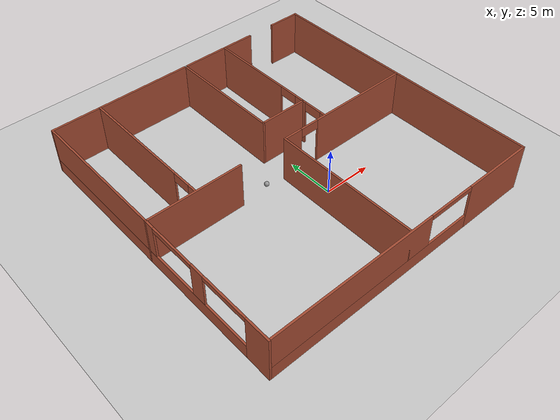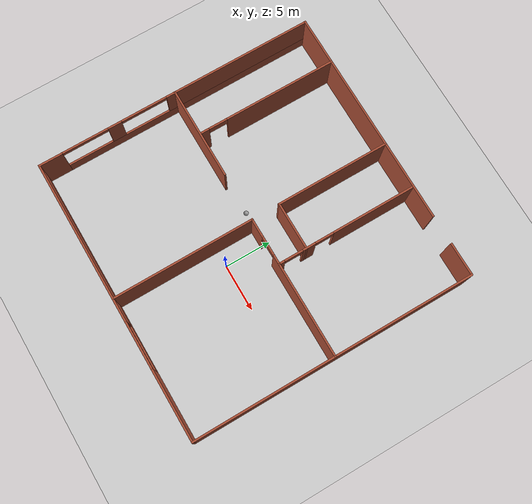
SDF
<sdf version="1.6">
 <world name="default">
  <model name="ground_plane">
   <static>1</static>
   <link name="link">
    <collision name="collision">
     <geometry><plane><normal>0 0 1</normal><size>100 100</size></plane></geometry>
     <surface><friction><ode><mu>100</mu><mu2>50</mu2></ode></friction></surface>
    </collision>
    <visual name="visual">
     <cast_shadows>0</cast_shadows>
     <geometry><plane><normal>0 0 1</normal><size>100 100</size></plane></geometry>
     <material>
      <script><uri>file://media/materials/scripts/gazebo.material</uri><name>Gazebo/Grey</name></script>
     </material>
    </visual>
   </link>
  </model>
  <model name="Appartment">
   <pose>-1.7896 4.0345 0 0 -0 0</pose>
   <link name="Door_1">
    <collision name="Door_1_Collision">
     <geometry><box><size>3 0.17 4</size></box></geometry>
     <pose>0 0 2 0 -0 0</pose>
    </collision>
    <visual name="Door_1_Visual">
     <pose>0 0 2 0 -0 0</pose>
     <geometry><box><size>3 0.17 4</size></box></geometry>
     <material>
      <script><uri>file://media/materials/scripts/gazebo.material</uri><name>Gazebo/Grey</name></script>
     </material>
    </visual>
    <pose>-10 -15 0 0 -0 0</pose>
   </link>
   <link name="Wall_26">
    <pose>-0.100001 15 0 0 -0 0</pose>
    <visual name="Wall_26_Visual_0">
     <pose>-3.2 0 2.5 0 -0 0</pose>
     <geometry><box><size>23.6 0.2 5</size></box></geometry>
     <material>
      <script><uri>file://media/materials/scripts/gazebo.material</uri><name>Gazebo/Bricks</name></script>
      <ambient>1 1 1 1</ambient>
     </material>
     <meta><layer>0</layer></meta>
    </visual>
    <collision name="Wall_26_Collision_0">
     <geometry><box><size>23.6 0.2 5</size></box></geometry>
     <pose>-3.2 0 2.5 0 -0 0</pose>
    </collision>
    <visual name="Wall_26_Visual_1">
     <pose>13.3 0 2.5 0 -0 0</pose>
     <geometry><box><size>3.4 0.2 5</size></box></geometry>
     <material>
      <script><uri>file://media/materials/scripts/gazebo.material</uri><name>Gazebo/Bricks</name></script>
      <ambient>1 1 1 1</ambient>
     </material>
     <meta><layer>0</layer></meta>
    </visual>
    <collision name="Wall_26_Collision_1">
     <geometry><box><size>3.4 0.2 5</size></box></geometry>
     <pose>13.3 0 2.5 0 -0 0</pose>
    </collision>
   </link>
   <link name="Wall_28">
    <collision name="Wall_28_Collision">
     <geometry><box><size>30.2 0.2 5</size></box></geometry>
     <pose>0 0 2.5 0 -0 0</pose>
    </collision>
    <visual name="Wall_28_Visual">
     <pose>0 0 2.5 0 -0 0</pose>
     <geometry><box><size>30.2 0.2 5</size></box></geometry>
     <material>
      <script><uri>file://media/materials/scripts/gazebo.material</uri><name>Gazebo/Bricks</name></script>
      <ambient>1 1 1 1</ambient>
     </material>
     <meta><layer>0</layer></meta>
    </visual>
    <pose>15 0 0 0 0 -1.5708</pose>
   </link>
   <link name="Wall_32">
    <pose>0.1 -15 0 0 -0 3.14159</pose>
    <visual name="Wall_32_Visual_0">
     <pose>-11.2 0 2.5 0 -0 0</pose>
     <geometry><box><size>7.6 0.2 5</size></box></geometry>
     <material>
      <script><uri>file://media/materials/scripts/gazebo.material</uri><name>Gazebo/Bricks</name></script>
      <ambient>1 1 1 1</ambient>
     </material>
     <meta><layer>0</layer></meta>
    </visual>
    <collision name="Wall_32_Collision_0">
     <geometry><box><size>7.6 0.2 5</size></box></geometry>
     <pose>-11.2 0 2.5 0 -0 0</pose>
    </collision>
    <visual name="Wall_32_Visual_1">
     <pose>3.8 0 0.75 0 -0 0</pose>
     <geometry><box><size>22.4 0.2 1.5</size></box></geometry>
     <material>
      <script><uri>file://media/materials/scripts/gazebo.material</uri><name>Gazebo/Bricks</name></script>
      <ambient>1 1 1 1</ambient>
     </material>
     <meta><layer>0</layer></meta>
    </visual>
    <collision name="Wall_32_Collision_1">
     <geometry><box><size>22.4 0.2 1.5</size></box></geometry>
     <pose>3.8 0 0.75 0 -0 0</pose>
    </collision>
    <visual name="Wall_32_Visual_2">
     <pose>6.3 0 3.25 0 -0 0</pose>
     <geometry><box><size>17.4 0.2 3.5</size></box></geometry>
     <material>
      <script><uri>file://media/materials/scripts/gazebo.material</uri><name>Gazebo/Bricks</name></script>
      <ambient>1 1 1 1</ambient>
     </material>
     <meta><layer>0</layer></meta>
    </visual>
    <collision name="Wall_32_Collision_2">
     <geometry><box><size>17.4 0.2 3.5</size></box></geometry>
     <pose>6.3 0 3.25 0 -0 0</pose>
    </collision>
    <visual name="Wall_32_Visual_3">
     <pose>-4.9 0 4.75 0 -0 0</pose>
     <geometry><box><size>5 0.2 0.5</size></box></geometry>
     <material>
      <script><uri>file://media/materials/scripts/gazebo.material</uri><name>Gazebo/Bricks</name></script>
      <ambient>1 1 1 1</ambient>
     </material>
     <meta><layer>0</layer></meta>
    </visual>
    <collision name="Wall_32_Collision_3">
     <geometry><box><size>5 0.2 0.5</size></box></geometry>
     <pose>-4.9 0 4.75 0 -0 0</pose>
    </collision>
   </link>
   <link name="Wall_37">
    <pose>-15 -0.1 0 0 -0 1.5708</pose>
    <visual name="Wall_37_Visual_0">
     <pose>-13.7 0 2.5 0 -0 0</pose>
     <geometry><box><size>2.6 0.2 5</size></box></geometry>
     <material>
      <script><uri>file://media/materials/scripts/gazebo.material</uri><name>Gazebo/Bricks</name></script>
      <ambient>1 1 1 1</ambient>
     </material>
     <meta><layer>0</layer></meta>
    </visual>
    <collision name="Wall_37_Collision_0">
     <geometry><box><size>2.6 0.2 5</size></box></geometry>
     <pose>-13.7 0 2.5 0 -0 0</pose>
    </collision>
    <visual name="Wall_37_Visual_1">
     <pose>1.3 0 0.75 0 -0 0</pose>
     <geometry><box><size>27.4 0.2 1.5</size></box></geometry>
     <material>
      <script><uri>file://media/materials/scripts/gazebo.material</uri><name>Gazebo/Bricks</name></script>
      <ambient>1 1 1 1</ambient>
     </material>
     <meta><layer>0</layer></meta>
    </visual>
    <collision name="Wall_37_Collision_1">
     <geometry><box><size>27.4 0.2 1.5</size></box></geometry>
     <pose>1.3 0 0.75 0 -0 0</pose>
    </collision>
    <visual name="Wall_37_Visual_2">
     <pose>-6.65 0 3.25 0 -0 0</pose>
     <geometry><box><size>1.5 0.2 3.5</size></box></geometry>
     <material>
      <script><uri>file://media/materials/scripts/gazebo.material</uri><name>Gazebo/Bricks</name></script>
      <ambient>1 1 1 1</ambient>
     </material>
     <meta><layer>0</layer></meta>
    </visual>
    <collision name="Wall_37_Collision_2">
     <geometry><box><size>1.5 0.2 3.5</size></box></geometry>
     <pose>-6.65 0 3.25 0 -0 0</pose>
    </collision>
    <visual name="Wall_37_Visual_3">
     <pose>7.05 0 3.25 0 -0 0</pose>
     <geometry><box><size>15.9 0.2 3.5</size></box></geometry>
     <material>
      <script><uri>file://media/materials/scripts/gazebo.material</uri><name>Gazebo/Bricks</name></script>
      <ambient>1 1 1 1</ambient>
     </material>
     <meta><layer>0</layer></meta>
    </visual>
    <collision name="Wall_37_Collision_3">
     <geometry><box><size>15.9 0.2 3.5</size></box></geometry>
     <pose>7.05 0 3.25 0 -0 0</pose>
    </collision>
    <visual name="Wall_37_Visual_4">
     <pose>-9.9 0 4.75 0 -0 0</pose>
     <geometry><box><size>5 0.2 0.5</size></box></geometry>
     <material>
      <script><uri>file://media/materials/scripts/gazebo.material</uri><name>Gazebo/Bricks</name></script>
      <ambient>1 1 1 1</ambient>
     </material>
     <meta><layer>0</layer></meta>
    </visual>
    <collision name="Wall_37_Collision_4">
     <geometry><box><size>5 0.2 0.5</size></box></geometry>
     <pose>-9.9 0 4.75 0 -0 0</pose>
    </collision>
    <visual name="Wall_37_Visual_5">
     <pose>-3.4 0 4.75 0 -0 0</pose>
     <geometry><box><size>5 0.2 0.5</size></box></geometry>
     <material>
      <script><uri>file://media/materials/scripts/gazebo.material</uri><name>Gazebo/Bricks</name></script>
      <ambient>1 1 1 1</ambient>
     </material>
     <meta><layer>0</layer></meta>
    </visual>
    <collision name="Wall_37_Collision_5">
     <geometry><box><size>5 0.2 0.5</size></box></geometry>
     <pose>-3.4 0 4.75 0 -0 0</pose>
    </collision>
   </link>
   <link name="Wall_39">
    <collision name="Wall_39_Collision">
     <geometry><box><size>0.2 0.2 5</size></box></geometry>
     <pose>0 0 2.5 0 -0 0</pose>
    </collision>
    <visual name="Wall_39_Visual">
     <pose>0 0 2.5 0 -0 0</pose>
     <geometry><box><size>0.2 0.2 5</size></box></geometry>
     <material>
      <script><uri>file://media/materials/scripts/gazebo.material</uri><name>Gazebo/Grey</name></script>
      <ambient>1 1 1 1</ambient>
     </material>
     <meta><layer>0</layer></meta>
    </visual>
    <pose>0 15 0 0 -0 0</pose>
   </link>
   <link name="Wall_42">
    <collision name="Wall_42_Collision">
     <geometry><box><size>12.2 0.2 5</size></box></geometry>
     <pose>0 0 2.5 0 -0 0</pose>
    </collision>
    <visual name="Wall_42_Visual">
     <pose>0 0 2.5 0 -0 0</pose>
     <geometry><box><size>12.2 0.2 5</size></box></geometry>
     <material>
      <script><uri>file://media/materials/scripts/gazebo.material</uri><name>Gazebo/Bricks</name></script>
      <ambient>1 1 1 1</ambient>
     </material>
     <meta><layer>0</layer></meta>
    </visual>
    <pose>0 9 0 0 0 -1.5708</pose>
   </link>
   <link name="Wall_46">
    <collision name="Wall_46_Collision">
     <geometry><box><size>10 0.2 5</size></box></geometry>
     <pose>0 0 2.5 0 -0 0</pose>
    </collision>
    <visual name="Wall_46_Visual">
     <pose>0 0 2.5 0 -0 0</pose>
     <geometry><box><size>10 0.2 5</size></box></geometry>
     <material>
      <script><uri>file://media/materials/scripts/gazebo.material</uri><name>Gazebo/Bricks</name></script>
      <ambient>1 1 1 1</ambient>
     </material>
     <meta><layer>0</layer></meta>
    </visual>
    <pose>-10.1 0 0 0 -0 0</pose>
   </link>
   <link name="Wall_49">
    <pose>-10 7.6 0 0 0 -1.5708</pose>
    <visual name="Wall_49_Visual_0">
     <pose>-1.45 0 2.5 0 -0 0</pose>
     <geometry><box><size>12.1 0.2 5</size></box></geometry>
     <material>
      <script><uri>file://media/materials/scripts/gazebo.material</uri><name>Gazebo/Bricks</name></script>
      <ambient>1 1 1 1</ambient>
     </material>
     <meta><layer>0</layer></meta>
    </visual>
    <collision name="Wall_49_Collision_0">
     <geometry><box><size>12.1 0.2 5</size></box></geometry>
     <pose>-1.45 0 2.5 0 -0 0</pose>
    </collision>
    <visual name="Wall_49_Visual_1">
     <pose>7.05 0 2.5 0 -0 0</pose>
     <geometry><box><size>0.9 0.2 5</size></box></geometry>
     <material>
      <script><uri>file://media/materials/scripts/gazebo.material</uri><name>Gazebo/Bricks</name></script>
      <ambient>1 1 1 1</ambient>
     </material>
     <meta><layer>0</layer></meta>
    </visual>
    <collision name="Wall_49_Collision_1">
     <geometry><box><size>0.9 0.2 5</size></box></geometry>
     <pose>7.05 0 2.5 0 -0 0</pose>
    </collision>
    <visual name="Wall_49_Visual_2">
     <pose>5.6 0 4.5 0 -0 0</pose>
     <geometry><box><size>2 0.2 1</size></box></geometry>
     <material>
      <script><uri>file://media/materials/scripts/gazebo.material</uri><name>Gazebo/Bricks</name></script>
      <ambient>1 1 1 1</ambient>
     </material>
     <meta><layer>0</layer></meta>
    </visual>
    <collision name="Wall_49_Collision_2">
     <geometry><box><size>2 0.2 1</size></box></geometry>
     <pose>5.6 0 4.5 0 -0 0</pose>
    </collision>
   </link>
   <link name="Wall_51">
    <pose>5 7.5 0 0 0 -1.5708</pose>
    <visual name="Wall_51_Visual_0">
     <pose>-3.05 0 2.5 0 -0 0</pose>
     <geometry><box><size>9.1 0.2 5</size></box></geometry>
     <material>
      <script><uri>file://media/materials/scripts/gazebo.material</uri><name>Gazebo/Bricks</name></script>
      <ambient>1 1 1 1</ambient>
     </material>
     <meta><layer>0</layer></meta>
    </visual>
    <collision name="Wall_51_Collision_0">
     <geometry><box><size>9.1 0.2 5</size></box></geometry>
     <pose>-3.05 0 2.5 0 -0 0</pose>
    </collision>
    <visual name="Wall_51_Visual_1">
     <pose>4.20298 0 2.5 0 -0 0</pose>
     <geometry><box><size>1.40597 0.2 5</size></box></geometry>
     <material>
      <script><uri>file://media/materials/scripts/gazebo.material</uri><name>Gazebo/Bricks</name></script>
      <ambient>1 1 1 1</ambient>
     </material>
     <meta><layer>0</layer></meta>
    </visual>
    <collision name="Wall_51_Collision_1">
     <geometry><box><size>1.40597 0.2 5</size></box></geometry>
     <pose>4.20298 0 2.5 0 -0 0</pose>
    </collision>
    <visual name="Wall_51_Visual_2">
     <pose>7.25298 0 2.5 0 -0 0</pose>
     <geometry><box><size>0.694034 0.2 5</size></box></geometry>
     <material>
      <script><uri>file://media/materials/scripts/gazebo.material</uri><name>Gazebo/Bricks</name></script>
      <ambient>1 1 1 1</ambient>
     </material>
     <meta><layer>0</layer></meta>
    </visual>
    <collision name="Wall_51_Collision_2">
     <geometry><box><size>0.694034 0.2 5</size></box></geometry>
     <pose>7.25298 0 2.5 0 -0 0</pose>
    </collision>
    <visual name="Wall_51_Visual_3">
     <pose>2.5 0 4.5 0 -0 0</pose>
     <geometry><box><size>2 0.2 1</size></box></geometry>
     <material>
      <script><uri>file://media/materials/scripts/gazebo.material</uri><name>Gazebo/Bricks</name></script>
      <ambient>1 1 1 1</ambient>
     </material>
     <meta><layer>0</layer></meta>
    </visual>
    <collision name="Wall_51_Collision_3">
     <geometry><box><size>2 0.2 1</size></box></geometry>
     <pose>2.5 0 4.5 0 -0 0</pose>
    </collision>
    <visual name="Wall_51_Visual_4">
     <pose>5.90597 0 4.5 0 -0 0</pose>
     <geometry><box><size>2 0.2 1</size></box></geometry>
     <material>
      <script><uri>file://media/materials/scripts/gazebo.material</uri><name>Gazebo/Bricks</name></script>
      <ambient>1 1 1 1</ambient>
     </material>
     <meta><layer>0</layer></meta>
    </visual>
    <collision name="Wall_51_Collision_4">
     <geometry><box><size>2 0.2 1</size></box></geometry>
     <pose>5.90597 0 4.5 0 -0 0</pose>
    </collision>
   </link>
   <link name="Wall_55">
    <collision name="Wall_55_Collision">
     <geometry><box><size>15.2 0.2 5</size></box></geometry>
     <pose>0 0 2.5 0 -0 0</pose>
    </collision>
    <visual name="Wall_55_Visual">
     <pose>0 0 2.5 0 -0 0</pose>
     <geometry><box><size>15.2 0.2 5</size></box></geometry>
     <material>
      <script><uri>file://media/materials/scripts/gazebo.material</uri><name>Gazebo/Bricks</name></script>
      <ambient>1 1 1 1</ambient>
     </material>
     <meta><layer>0</layer></meta>
    </visual>
    <pose>0 -7.5 0 0 -0 1.5708</pose>
   </link>
   <link name="Wall_57">
    <pose>7.5 0 0 0 -0 0</pose>
    <visual name="Wall_57_Visual_0">
     <pose>-6.55 0 2.5 0 -0 0</pose>
     <geometry><box><size>2.1 0.2 5</size></box></geometry>
     <material>
      <script><uri>file://media/materials/scripts/gazebo.material</uri><name>Gazebo/Bricks</name></script>
      <ambient>1 1 1 1</ambient>
     </material>
     <meta><layer>0</layer></meta>
    </visual>
    <collision name="Wall_57_Collision_0">
     <geometry><box><size>2.1 0.2 5</size></box></geometry>
     <pose>-6.55 0 2.5 0 -0 0</pose>
    </collision>
    <visual name="Wall_57_Visual_1">
     <pose>2.05 0 2.5 0 -0 0</pose>
     <geometry><box><size>11.1 0.2 5</size></box></geometry>
     <material>
      <script><uri>file://media/materials/scripts/gazebo.material</uri><name>Gazebo/Bricks</name></script>
      <ambient>1 1 1 1</ambient>
     </material>
     <meta><layer>0</layer></meta>
    </visual>
    <collision name="Wall_57_Collision_1">
     <geometry><box><size>11.1 0.2 5</size></box></geometry>
     <pose>2.05 0 2.5 0 -0 0</pose>
    </collision>
    <visual name="Wall_57_Visual_2">
     <pose>-4.5 0 4.5 0 -0 0</pose>
     <geometry><box><size>2 0.2 1</size></box></geometry>
     <material>
      <script><uri>file://media/materials/scripts/gazebo.material</uri><name>Gazebo/Bricks</name></script>
      <ambient>1 1 1 1</ambient>
     </material>
     <meta><layer>0</layer></meta>
    </visual>
    <collision name="Wall_57_Collision_2">
     <geometry><box><size>2 0.2 1</size></box></geometry>
     <pose>-4.5 0 4.5 0 -0 0</pose>
    </collision>
   </link>
   <link name="Wall_61">
    <collision name="Wall_61_Collision">
     <geometry><box><size>5.2 0.2 5</size></box></geometry>
     <pose>0 0 2.5 0 -0 0</pose>
    </collision>
    <visual name="Wall_61_Visual">
     <pose>0 0 2.5 0 -0 0</pose>
     <geometry><box><size>5.2 0.2 5</size></box></geometry>
     <material>
      <script><uri>file://media/materials/scripts/gazebo.material</uri><name>Gazebo/Bricks</name></script>
      <ambient>1 1 1 1</ambient>
     </material>
     <meta><layer>0</layer></meta>
    </visual>
    <pose>2.5 3 0 0 -0 0</pose>
   </link>
   <static>1</static>
  </model>
  <model name="my_ball">
   <link name="link_0">
    <inertial>
     <mass>1</mass>
     <inertia><ixx>0.1</ixx><ixy>0</ixy><ixz>0</ixz><iyy>0.1</iyy><iyz>0</iyz><izz>0.1</izz></inertia>
    </inertial>
    <visual name="visual">
     <geometry><sphere><radius>0.25</radius></sphere></geometry>
     <material>
      <lighting>1</lighting>
      <script><uri>file://media/materials/scripts/gazebo.material</uri><name>Gazebo/Grey</name></script>
      <shader type="pixel"><normal_map>__default__</normal_map></shader>
      <ambient>1 1 1 1</ambient>
      <diffuse>1 1 1 1</diffuse>
      <specular>1 1 1 1</specular>
      <emissive>1 1 1 1</emissive>
     </material>
    </visual>
    <collision name="collision">
     <geometry><sphere><radius>0.25</radius></sphere></geometry>
     <surface>
      <friction>
       <ode><mu>1</mu><mu2>1</mu2><fdir1>0 0 0</fdir1><slip1>0</slip1><slip2>0</slip2></ode>
       <torsional>
        <coefficient>1</coefficient>
        <patch_radius>0</patch_radius>
        <surface_radius>0</surface_radius>
        <use_patch_radius>1</use_patch_radius>
        <ode><slip>0</slip></ode>
       </torsional>
      </friction>
      <bounce><restitution_coefficient>0</restitution_coefficient><threshold>1e+06</threshold></bounce>
      <contact>
       <collide_without_contact>0</collide_without_contact>
       <collide_without_contact_bitmask>1</collide_without_contact_bitmask>
       <collide_bitmask>1</collide_bitmask>
       <ode>
        <soft_cfm>0</soft_cfm>
        <soft_erp>0.2</soft_erp>
        <kp>1e+13</kp>
        <kd>1</kd>
        <max_vel>0.01</max_vel>
        <min_depth>0</min_depth>
       </ode>
       <bullet>
        <split_impulse>1</split_impulse>
        <split_impulse_penetration_threshold>-0.01</split_impulse_penetration_threshold>
        <soft_cfm>0</soft_cfm>
        <soft_erp>0.2</soft_erp>
        <kp>1e+13</kp>
        <kd>1</kd>
       </bullet>
      </contact>
     </surface>
    </collision>
   </link>
   <static>0</static>
   <pose>-3.7107 4.46092 0.25 0 -0 0</pose>
  </model>
 </world>
</sdf>
